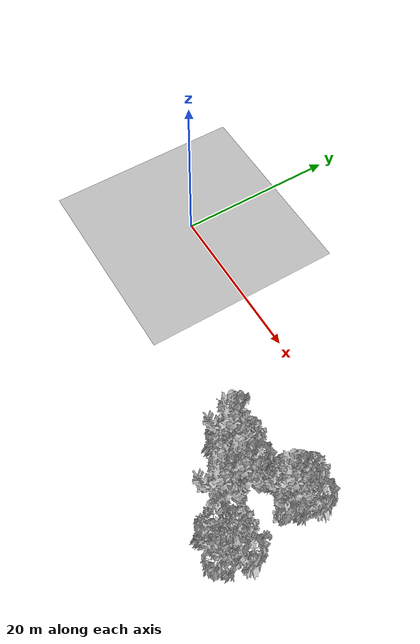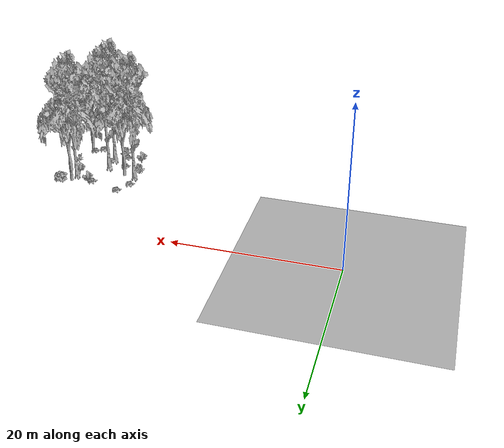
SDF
<sdf version="1.7">
 <world name="default">
  <model name="ground_plane">
   <static>1</static>
   <link name="link">
    <collision name="collision">
     <pose>-50 0 0 0 -0 0</pose>
     <geometry><plane><normal>0 0 1</normal><size>80 80</size></plane></geometry>
     <surface><contact><ode><min_depth>0.01</min_depth><max_vel>0</max_vel></ode></contact></surface>
    </collision>
    <visual name="grass">
     <cast_shadows>0</cast_shadows>
     <geometry>
      <mesh>
       <scale>0.46714285714285714 0.46714285714285714 0.1</scale>
       <uri>file://grass_plane/meshes/grass_plane.dae</uri>
      </mesh>
     </geometry>
    </visual>
   </link>
  </model>
  <model name="Tree 44">
   <static>1</static>
   <pose>31.19423389897409 -13.063855631341834 0 1.57079 -0 0</pose>
   <link name="link">
    <collision name="collision">
     <geometry><mesh><scale>3.5 5 3.5</scale><uri>model://tree_2/meshes/tree_2.obj</uri></mesh></geometry>
    </collision>
    <visual name="visual">
     <geometry><mesh><scale>3.5 5 3.5</scale><uri>model://tree_2/meshes/tree_2.obj</uri></mesh></geometry>
    </visual>
   </link>
  </model>
  <model name="Tree 237">
   <static>1</static>
   <pose>38.20947447427844 -18.535042096509777 0 1.57079 -0 0</pose>
   <link name="link">
    <collision name="collision">
     <geometry><mesh><scale>3.5 5 3.5</scale><uri>model://tree_2/meshes/tree_2.obj</uri></mesh></geometry>
    </collision>
    <visual name="visual">
     <geometry><mesh><scale>3.5 5 3.5</scale><uri>model://tree_2/meshes/tree_2.obj</uri></mesh></geometry>
    </visual>
   </link>
  </model>
  <model name="Tree 238">
   <static>1</static>
   <pose>37.30704508976994 -9.989689709618546 0 1.57079 -0 0</pose>
   <link name="link">
    <collision name="collision">
     <geometry><mesh><scale>3.5 5 3.5</scale><uri>model://tree_2/meshes/tree_2.obj</uri></mesh></geometry>
    </collision>
    <visual name="visual">
     <geometry><mesh><scale>3.5 5 3.5</scale><uri>model://tree_2/meshes/tree_2.obj</uri></mesh></geometry>
    </visual>
   </link>
  </model>
  <model name="Tree 328">
   <static>1</static>
   <pose>29.971187220954434 -13.17772548031784 0 1.57079 -0 0</pose>
   <link name="link">
    <collision name="collision">
     <geometry><mesh><scale>3.5 5 3.5</scale><uri>model://tree_9/meshes/tree_9.obj</uri></mesh></geometry>
    </collision>
    <visual name="visual">
     <geometry><mesh><scale>3.5 5 3.5</scale><uri>model://tree_9/meshes/tree_9.obj</uri></mesh></geometry>
    </visual>
   </link>
  </model>
  <model name="Tree 462">
   <static>1</static>
   <pose>34.23478165081333 -14.748730467740625 0 1.57079 -0 0</pose>
   <link name="link">
    <collision name="collision">
     <geometry><mesh><scale>3.5 5 3.5</scale><uri>model://tree_9/meshes/tree_9.obj</uri></mesh></geometry>
    </collision>
    <visual name="visual">
     <geometry><mesh><scale>3.5 5 3.5</scale><uri>model://tree_9/meshes/tree_9.obj</uri></mesh></geometry>
    </visual>
   </link>
  </model>
  <model name="Tree 518">
   <static>1</static>
   <pose>34.28960337380799 -16.87195936205817 0 1.57079 -0 0</pose>
   <link name="link">
    <collision name="collision">
     <geometry><mesh><scale>3.5 5 3.5</scale><uri>model://tree_9/meshes/tree_9.obj</uri></mesh></geometry>
    </collision>
    <visual name="visual">
     <geometry><mesh><scale>3.5 5 3.5</scale><uri>model://tree_9/meshes/tree_9.obj</uri></mesh></geometry>
    </visual>
   </link>
  </model>
  <model name="Tree 569">
   <static>1</static>
   <pose>37.45094163596188 -11.603807485294418 0 1.57079 -0 0</pose>
   <link name="link">
    <collision name="collision">
     <geometry><mesh><scale>3.5 5 3.5</scale><uri>model://tree_9/meshes/tree_9.obj</uri></mesh></geometry>
    </collision>
    <visual name="visual">
     <geometry><mesh><scale>3.5 5 3.5</scale><uri>model://tree_9/meshes/tree_9.obj</uri></mesh></geometry>
    </visual>
   </link>
  </model>
  <model name="Bush 28">
   <static>1</static>
   <pose>38.17413712687298 -13.762086264107111 0 1.57079 -0 0</pose>
   <link name="link">
    <collision name="collision">
     <geometry><mesh><scale>2 2 2</scale><uri>model://bush_5/meshes/bush_5.obj</uri></mesh></geometry>
     <surface><contact><collide_without_contact>false</collide_without_contact></contact></surface>
    </collision>
    <visual name="visual">
     <geometry><mesh><scale>2 2 2</scale><uri>model://bush_5/meshes/bush_5.obj</uri></mesh></geometry>
    </visual>
   </link>
  </model>
  <model name="Bush 39">
   <static>1</static>
   <pose>33.03333012974528 -17.91910709989393 0 1.57079 -0 0</pose>
   <link name="link">
    <collision name="collision">
     <geometry><mesh><scale>2 2 2</scale><uri>model://bush_4/meshes/bush_4.obj</uri></mesh></geometry>
     <surface><contact><collide_without_contact>false</collide_without_contact></contact></surface>
    </collision>
    <visual name="visual">
     <geometry><mesh><scale>2 2 2</scale><uri>model://bush_4/meshes/bush_4.obj</uri></mesh></geometry>
    </visual>
   </link>
  </model>
  <model name="Bush 51">
   <static>1</static>
   <pose>34.6797920849628 -10.383071097321803 0 1.57079 -0 0</pose>
   <link name="link">
    <collision name="collision">
     <geometry><mesh><scale>2 2 2</scale><uri>model://bush_2/meshes/bush_2.obj</uri></mesh></geometry>
     <surface><contact><collide_without_contact>false</collide_without_contact></contact></surface>
    </collision>
    <visual name="visual">
     <geometry><mesh><scale>2 2 2</scale><uri>model://bush_2/meshes/bush_2.obj</uri></mesh></geometry>
    </visual>
   </link>
  </model>
  <model name="Bush 68">
   <static>1</static>
   <pose>29.56208641065986 -14.015248201549468 0 1.57079 -0 0</pose>
   <link name="link">
    <collision name="collision">
     <geometry><mesh><scale>2 2 2</scale><uri>model://bush_4/meshes/bush_4.obj</uri></mesh></geometry>
     <surface><contact><collide_without_contact>false</collide_without_contact></contact></surface>
    </collision>
    <visual name="visual">
     <geometry><mesh><scale>2 2 2</scale><uri>model://bush_4/meshes/bush_4.obj</uri></mesh></geometry>
    </visual>
   </link>
  </model>
  <model name="Bush 85">
   <static>1</static>
   <pose>38.30166800689186 -9.052069717184796 0 1.57079 -0 0</pose>
   <link name="link">
    <collision name="collision">
     <geometry><mesh><scale>2 2 2</scale><uri>model://bush_1/meshes/bush_1.obj</uri></mesh></geometry>
     <surface><contact><collide_without_contact>false</collide_without_contact></contact></surface>
    </collision>
    <visual name="visual">
     <geometry><mesh><scale>2 2 2</scale><uri>model://bush_1/meshes/bush_1.obj</uri></mesh></geometry>
    </visual>
   </link>
  </model>
  <model name="Bush 107">
   <static>1</static>
   <pose>32.673983938453446 -17.54790135815739 0 1.57079 -0 0</pose>
   <link name="link">
    <collision name="collision">
     <geometry><mesh><scale>2 2 2</scale><uri>model://bush_2/meshes/bush_2.obj</uri></mesh></geometry>
     <surface><contact><collide_without_contact>false</collide_without_contact></contact></surface>
    </collision>
    <visual name="visual">
     <geometry><mesh><scale>2 2 2</scale><uri>model://bush_2/meshes/bush_2.obj</uri></mesh></geometry>
    </visual>
   </link>
  </model>
  <model name="Bush 178">
   <static>1</static>
   <pose>34.546994417728826 -16.087104722602447 0 1.57079 -0 0</pose>
   <link name="link">
    <collision name="collision">
     <geometry><mesh><scale>2 2 2</scale><uri>model://bush_2/meshes/bush_2.obj</uri></mesh></geometry>
     <surface><contact><collide_without_contact>false</collide_without_contact></contact></surface>
    </collision>
    <visual name="visual">
     <geometry><mesh><scale>2 2 2</scale><uri>model://bush_2/meshes/bush_2.obj</uri></mesh></geometry>
    </visual>
   </link>
  </model>
  <model name="Bush 224">
   <static>1</static>
   <pose>30.759029076385616 -9.127366525581504 0 1.57079 -0 0</pose>
   <link name="link">
    <collision name="collision">
     <geometry><mesh><scale>2 2 2</scale><uri>model://bush_2/meshes/bush_2.obj</uri></mesh></geometry>
     <surface><contact><collide_without_contact>false</collide_without_contact></contact></surface>
    </collision>
    <visual name="visual">
     <geometry><mesh><scale>2 2 2</scale><uri>model://bush_2/meshes/bush_2.obj</uri></mesh></geometry>
    </visual>
   </link>
  </model>
  <model name="Bush 294">
   <static>1</static>
   <pose>36.864793607696825 -18.984605607581617 0 1.57079 -0 0</pose>
   <link name="link">
    <collision name="collision">
     <geometry><mesh><scale>2 2 2</scale><uri>model://bush_2/meshes/bush_2.obj</uri></mesh></geometry>
     <surface><contact><collide_without_contact>false</collide_without_contact></contact></surface>
    </collision>
    <visual name="visual">
     <geometry><mesh><scale>2 2 2</scale><uri>model://bush_2/meshes/bush_2.obj</uri></mesh></geometry>
    </visual>
   </link>
  </model>
  <model name="Bush 386">
   <static>1</static>
   <pose>30.410065812251915 -16.82166514096898 0 1.57079 -0 0</pose>
   <link name="link">
    <collision name="collision">
     <geometry><mesh><scale>2 2 2</scale><uri>model://bush_0/meshes/bush_0.obj</uri></mesh></geometry>
     <surface><contact><collide_without_contact>false</collide_without_contact></contact></surface>
    </collision>
    <visual name="visual">
     <geometry><mesh><scale>2 2 2</scale><uri>model://bush_0/meshes/bush_0.obj</uri></mesh></geometry>
    </visual>
   </link>
  </model>
  <model name="Bush 452">
   <static>1</static>
   <pose>37.15562999142267 -11.879513592112765 0 1.57079 -0 0</pose>
   <link name="link">
    <collision name="collision">
     <geometry><mesh><scale>2 2 2</scale><uri>model://bush_0/meshes/bush_0.obj</uri></mesh></geometry>
     <surface><contact><collide_without_contact>false</collide_without_contact></contact></surface>
    </collision>
    <visual name="visual">
     <geometry><mesh><scale>2 2 2</scale><uri>model://bush_0/meshes/bush_0.obj</uri></mesh></geometry>
    </visual>
   </link>
  </model>
  <model name="Bush 467">
   <static>1</static>
   <pose>32.06999520601383 -15.229033710548467 0 1.57079 -0 0</pose>
   <link name="link">
    <collision name="collision">
     <geometry><mesh><scale>2 2 2</scale><uri>model://bush_2/meshes/bush_2.obj</uri></mesh></geometry>
     <surface><contact><collide_without_contact>false</collide_without_contact></contact></surface>
    </collision>
    <visual name="visual">
     <geometry><mesh><scale>2 2 2</scale><uri>model://bush_2/meshes/bush_2.obj</uri></mesh></geometry>
    </visual>
   </link>
  </model>
  <model name="Bush 475">
   <static>1</static>
   <pose>35.16864397710036 -9.952628876666026 0 1.57079 -0 0</pose>
   <link name="link">
    <collision name="collision">
     <geometry><mesh><scale>2 2 2</scale><uri>model://bush_0/meshes/bush_0.obj</uri></mesh></geometry>
     <surface><contact><collide_without_contact>false</collide_without_contact></contact></surface>
    </collision>
    <visual name="visual">
     <geometry><mesh><scale>2 2 2</scale><uri>model://bush_0/meshes/bush_0.obj</uri></mesh></geometry>
    </visual>
   </link>
  </model>
  <model name="Bush 585">
   <static>1</static>
   <pose>29.667446550128588 -10.97419047936036 0 1.57079 -0 0</pose>
   <link name="link">
    <collision name="collision">
     <geometry><mesh><scale>2 2 2</scale><uri>model://bush_2/meshes/bush_2.obj</uri></mesh></geometry>
     <surface><contact><collide_without_contact>false</collide_without_contact></contact></surface>
    </collision>
    <visual name="visual">
     <geometry><mesh><scale>2 2 2</scale><uri>model://bush_2/meshes/bush_2.obj</uri></mesh></geometry>
    </visual>
   </link>
  </model>
  <model name="Bush 587">
   <static>1</static>
   <pose>37.86168097094823 -18.26618118464049 0 1.57079 -0 0</pose>
   <link name="link">
    <collision name="collision">
     <geometry><mesh><scale>2 2 2</scale><uri>model://bush_2/meshes/bush_2.obj</uri></mesh></geometry>
     <surface><contact><collide_without_contact>false</collide_without_contact></contact></surface>
    </collision>
    <visual name="visual">
     <geometry><mesh><scale>2 2 2</scale><uri>model://bush_2/meshes/bush_2.obj</uri></mesh></geometry>
    </visual>
   </link>
  </model>
 </world>
</sdf>
